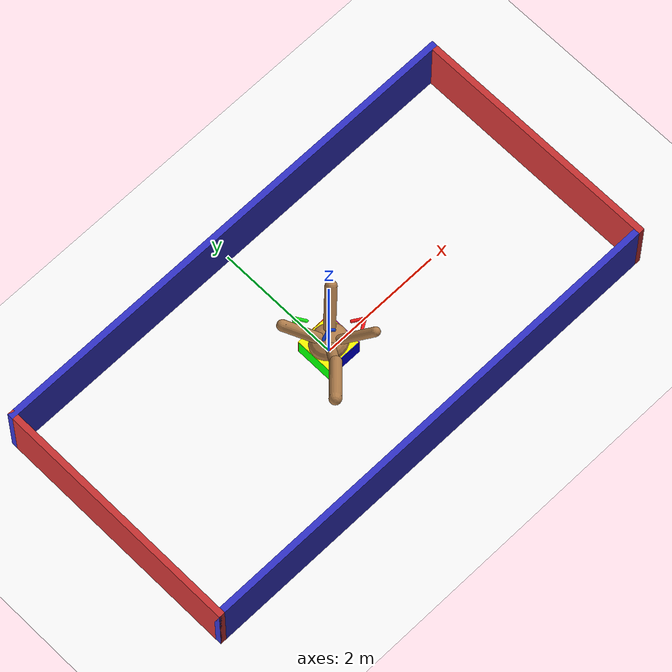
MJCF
<mujoco model="dex-gripper">
  <asset>
    <texture name="skybox" type="skybox" builtin="gradient" rgb1=".2 .3 .4" rgb2="0 0 0" width="800" height="800" mark="random" markrgb="1 1 1"/>
    <texture name="grid" type="2d" builtin="checker" rgb1=".2 .1 .2" rgb2=".3 .2 .3" width="300" height="300" mark="edge" markrgb=".3 .2 .3"/>
    <material name="grid" texture="grid" texrepeat="1 1" texuniform="true" reflectance=".2"/>
    <material name="self" rgba=".7 .5 .3 1"/>
  </asset>
  <visual>
    <headlight ambient=".4 .4 .4" diffuse=".8 .8 .8" specular="0.1 0.1 0.1"/>
    <map znear=".001"/>
    <quality shadowsize="16384"/>
  </visual>
  <compiler coordinate="local" angle="degree" inertiafromgeom="true"/>
  <option integrator="RK4" timestep="0.01"/>
  <default>
    <joint armature="1" damping="1" limited="true"/>
    <geom conaffinity="0" condim="3" density="5.0" friction="1 0.5 0.5" margin="0.01" rgba=".7 .5 .3 1"/>
  </default>
  <worldbody>
    <light cutoff="100" diffuse="1 1 1" dir="0.3 0 -1.3" directional="true" exponent="1" pos="-30 0 130" specular=".1 .1 .1"/>
    <geom conaffinity="1" condim="3" name="floor" pos="0 0 0" rgba="1 1 1 1" size="200 200 .125" type="plane" material="grid"/>
    <!-- Fixed gripper base: no root slide joints anymore -->
    <body name="0" pos="0 0 0.3" gravcomp="1">
      <camera name="track" mode="fixed" pos="0 10 5" quat="0 0 0.547 0.892"/>
      <geom pos="0 0 0" size="0.300991 0.268422 0.17617" type="ellipsoid"/>
      <!-- Arm 1: flipped upward -->
      <body name="1" pos="0 0 0" gravcomp="1">
        <joint axis="-0.707107 0.707107 0" name="1_joint" pos="0 0 0" range="-45 45" type="hinge" damping="0"/>
        <geom fromto="-0.080645 -0.074312 -0.089376 0.451156 0.415723 0.5" size="0.08959 0.08959 0.08959" type="capsule"/>
      </body>
      <!-- Arm 2: flipped upward -->
      <body name="2" pos="0 0 0" gravcomp="1">
        <joint axis="-0.707107 -0.707107 0" name="2_joint" pos="0 0 0" range="-45 45" type="hinge" damping="0"/>
        <geom fromto="0.065661 -0.069156 -0.075202 -0.436565 0.459804 0.5" size="0.08395 0.08395 0.08395" type="capsule"/>
      </body>
      <!-- Arm 3: flipped upward -->
      <body name="3" pos="0 0 0" gravcomp="1">
        <joint axis="0.707107 -0.707107 0" name="3_joint" pos="0 0 0" range="-45 45" type="hinge" damping="0"/>
        <geom fromto="0.027011 0.037736 -0.03911 -0.345319 -0.482436 0.5" size="0.076851 0.076851 0.076851" type="capsule"/>
        <body name="13" pos="-0.345319 -0.482436 0.5" gravcomp="1">
          <joint axis="0.707107 -0.707107 0" name="13_joint" pos="0 0 0" range="-45 45" type="hinge" damping="0"/>
          <geom fromto="0.061006 0.060836 -0.061654 -0.494744 -0.493364 0.5" size="0.092312 0.092312 0.092312" type="capsule"/>
        </body>
      </body>
      <!-- Arm 4: flipped upward -->
      <body name="4" pos="0 0 0" gravcomp="1">
        <joint axis="0.707107 0.707107 0" name="4_joint" pos="0 0 0" range="-45 45" type="hinge" damping="0"/>
        <geom fromto="-0.042093 0.052458 -0.052612 0.400035 -0.498541 0.5" size="0.071685 0.071685 0.071685" type="capsule"/>
      </body>
    </body>
    <!-- Box starts above the gripper -->
    <body name="box" pos="0 0 0">
      <freejoint name="box_joint"/>
      <!-- Top (Yellow) -->
      <geom name="box_top" type="box" pos="0 0 0.295" size="0.3 0.3 0.005" rgba="1 1 0 1" density="10" friction="2.5 0.1 0.05" contype="1" conaffinity="1"/>
      <!-- Bottom (White) -->
      <geom name="box_bottom" type="box" pos="0 0 -0.295" size="0.3 0.3 0.005" rgba="1 1 1 1" density="10" friction="2.5 0.1 0.05" contype="1" conaffinity="1"/>
      <!-- Front (Red) -->
      <geom name="box_front" type="box" pos="0 0.295 0" size="0.3 0.005 0.3" rgba="1 0 0 1" density="10" friction="2.5 0.1 0.05" contype="1" conaffinity="1"/>
      <!-- Back (Blue) -->
      <geom name="box_back" type="box" pos="0 -0.295 0" size="0.3 0.005 0.3" rgba="0 0 1 1" density="10" friction="2.5 0.1 0.05" contype="1" conaffinity="1"/>
      <!-- Left (Green) -->
      <geom name="box_left" type="box" pos="-0.295 0 0" size="0.005 0.3 0.3" rgba="0 1 0 1" density="10" friction="2.5 0.1 0.05" contype="1" conaffinity="1"/>
      <!-- Right (Magenta) -->
      <geom name="box_right" type="box" pos="0.295 0 0" size="0.005 0.3 0.3" rgba="1 0 1 1" density="10" friction="2.5 0.1 0.05" contype="1" conaffinity="1"/>
    </body>
    <!-- RGB arrows visualize the target orientation and never participate in collisions. -->
    <body name="goal_orientation_frame" pos="0 0 0">
      <!-- Goal X axis (red). -->
      <geom name="goal_axis_x_shaft" type="capsule" fromto="0 0 0 0.7 0 0" size="0.018" rgba="1 0.1 0.1 0.9" contype="0" conaffinity="0"/>
      <geom name="goal_axis_x_head_pos" type="capsule" fromto="0.7 0 0 0.54 0.1 0" size="0.025" rgba="1 0.1 0.1 0.9" contype="0" conaffinity="0"/>
      <geom name="goal_axis_x_head_neg" type="capsule" fromto="0.7 0 0 0.54 -0.1 0" size="0.025" rgba="1 0.1 0.1 0.9" contype="0" conaffinity="0"/>
      <!-- Goal Y axis (green). -->
      <geom name="goal_axis_y_shaft" type="capsule" fromto="0 0 0 0 0.7 0" size="0.018" rgba="0.1 1 0.1 0.9" contype="0" conaffinity="0"/>
      <geom name="goal_axis_y_head_pos" type="capsule" fromto="0 0.7 0 0.1 0.54 0" size="0.025" rgba="0.1 1 0.1 0.9" contype="0" conaffinity="0"/>
      <geom name="goal_axis_y_head_neg" type="capsule" fromto="0 0.7 0 -0.1 0.54 0" size="0.025" rgba="0.1 1 0.1 0.9" contype="0" conaffinity="0"/>
      <!-- Goal Z axis (blue). -->
      <geom name="goal_axis_z_shaft" type="capsule" fromto="0 0 0 0 0 0.7" size="0.018" rgba="0.1 0.3 1 0.9" contype="0" conaffinity="0"/>
      <geom name="goal_axis_z_head_pos" type="capsule" fromto="0 0 0.7 0.1 0 0.54" size="0.025" rgba="0.1 0.3 1 0.9" contype="0" conaffinity="0"/>
      <geom name="goal_axis_z_head_neg" type="capsule" fromto="0 0 0.7 -0.1 0 0.54" size="0.025" rgba="0.1 0.3 1 0.9" contype="0" conaffinity="0"/>
    </body>
    <body name="box_walls" pos="0 0 0">
      <geom name="wall_left" type="box" pos="-4.0 0 0.5" size="0.05 2.05 0.5" rgba="0.8 0.2 0.2 1" contype="1" conaffinity="1"/>
      <geom name="wall_right" type="box" pos="4.0 0 0.5" size="0.05 2.05 0.5" rgba="0.8 0.2 0.2 1" contype="1" conaffinity="1"/>
      <geom name="wall_front" type="box" pos="0 2.0 0.5" size="4.05 0.05 0.5" rgba="0.2 0.2 0.8 1" contype="1" conaffinity="1"/>
      <geom name="wall_back" type="box" pos="0 -2.0 0.5" size="4.05 0.05 0.5" rgba="0.2 0.2 0.8 1" contype="1" conaffinity="1"/>
    </body>
  </worldbody>
  <actuator>
    <!-- Only the finger joints remain actuated -->
    <motor ctrllimited="true" ctrlrange="-1.0 1.0" joint="1_joint" gear="63.101501" name="1_joint"/>
    <motor ctrllimited="true" ctrlrange="-1.0 1.0" joint="2_joint" gear="89.976249" name="2_joint"/>
    <motor ctrllimited="true" ctrlrange="-1.0 1.0" joint="3_joint" gear="59.543687" name="3_joint"/>
    <motor ctrllimited="true" ctrlrange="-1.0 1.0" joint="4_joint" gear="103.295607" name="4_joint"/>
    <motor ctrllimited="true" ctrlrange="-1.0 1.0" joint="13_joint" gear="97.112783" name="13_joint"/>
  </actuator>
</mujoco>
